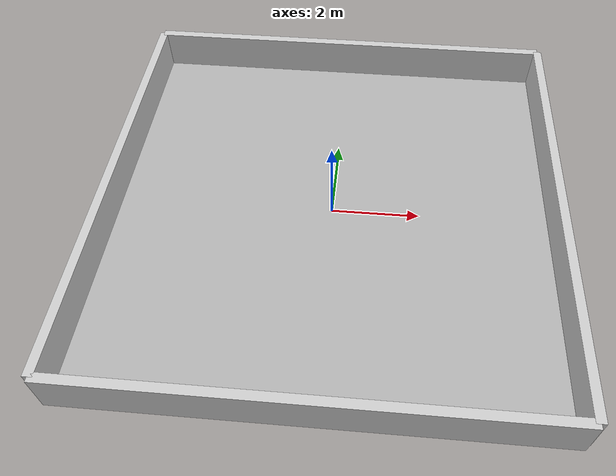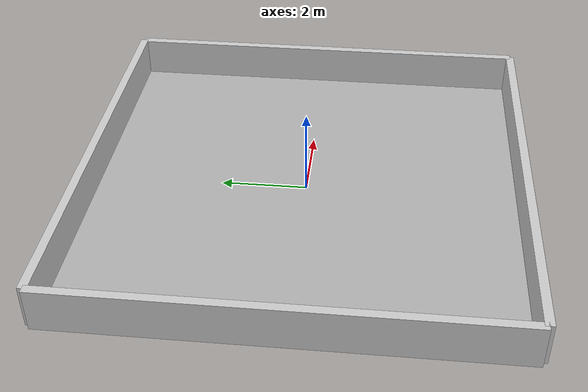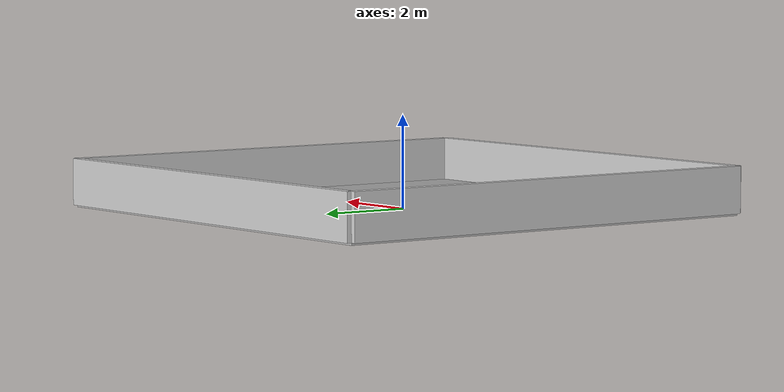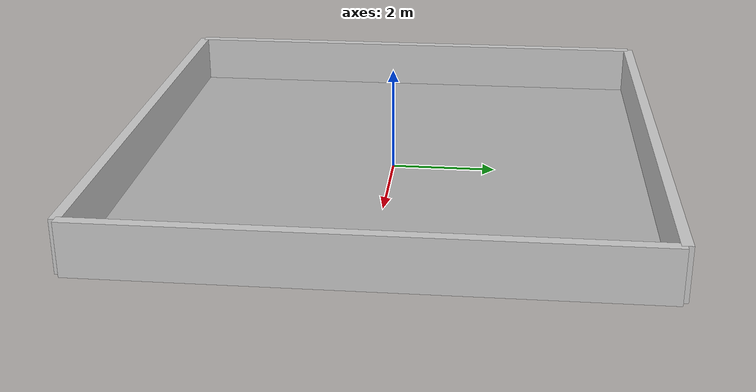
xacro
<?xml version="1.0"?>
<robot xmlns:xacro="http://www.ros.org/wiki/xacro" name="turtlebot_arena">

  <!-- "world" link to serve as the fixed reference -->
  <link name="world"/>

  <!-- The floor (arena_link) -->
  <link name="arena_link">
    <visual>
      <geometry>
        <!-- 10x10 floor, 0.1 thick -->
        <box size="10 10 0.1"/>
      </geometry>
      <material name="arena_gray">
        <color rgba="0.7 0.7 0.7 1"/>
      </material>
    </visual>
    <collision>
      <geometry>
        <box size="10 10 0.1"/>
      </geometry>
    </collision>
    <inertial>
      <!-- Increased mass to make it very stable -->
      <mass value="1000.0"/>
      <!-- Adjusted inertia for a heavy, stable platform -->
      <inertia ixx="1000.0" ixy="0.0" ixz="0.0" iyy="1000.0" iyz="0.0" izz="1000.0"/>
    </inertial>
    <!-- Add Gazebo-specific tags -->
    <gazebo>
      <static>true</static>
    </gazebo>
  </link>

  <!-- Attach the floor to the world with a fixed joint -->
  <joint name="world_to_arena" type="fixed">
    <parent link="world"/>
    <child link="arena_link"/>
    <origin xyz="0 0 0" rpy="0 0 0"/>
  </joint>

  <!-- ========== Four walls around the floor ========== -->
  <!-- North wall -->
  <link name="arena_wall_north">
    <visual>
      <geometry>
        <!-- 10m wide, 0.2m thick, 1m tall -->
        <box size="10 0.2 1.0"/>
      </geometry>
      <material name="wall_gray">
        <color rgba="0.8 0.8 0.8 1"/>
      </material>
    </visual>
    <collision>
      <geometry>
        <box size="10 0.2 1.0"/>
      </geometry>
    </collision>
    <inertial>
      <mass value="100.0"/>
      <inertia ixx="100.0" ixy="0" ixz="0" iyy="100.0" iyz="0" izz="100.0"/>
    </inertial>
  </link>

  <joint name="joint_arena_north_wall" type="fixed">
    <parent link="arena_link"/>
    <child link="arena_wall_north"/>
    <!-- Shift the north wall up on the Y axis, half the floor dimension + half wall thickness -->
    <origin xyz="0 5.0 0.5" rpy="0 0 0"/>
  </joint>

  <!-- South wall -->
  <link name="arena_wall_south">
    <visual>
      <geometry>
        <box size="10 0.2 1.0"/>
      </geometry>
      <material name="wall_gray"/>
    </visual>
    <collision>
      <geometry>
        <box size="10 0.2 1.0"/>
      </geometry>
    </collision>
    <inertial>
      <mass value="100.0"/>
      <inertia ixx="100.0" ixy="0" ixz="0" iyy="100.0" iyz="0" izz="100.0"/>
    </inertial>
  </link>

  <joint name="joint_arena_south_wall" type="fixed">
    <parent link="arena_link"/>
    <child link="arena_wall_south"/>
    <origin xyz="0 -5.0 0.5" rpy="0 0 0"/>
  </joint>

  <!-- East wall -->
  <link name="arena_wall_east">
    <visual>
      <geometry>
        <box size="0.2 10 1.0"/>
      </geometry>
      <material name="wall_gray"/>
    </visual>
    <collision>
      <geometry>
        <box size="0.2 10 1.0"/>
      </geometry>
    </collision>
    <inertial>
      <mass value="100.0"/>
      <inertia ixx="100.0" ixy="0" ixz="0" iyy="100.0" iyz="0" izz="100.0"/>
    </inertial>
  </link>

  <joint name="joint_arena_east_wall" type="fixed">
    <parent link="arena_link"/>
    <child link="arena_wall_east"/>
    <origin xyz="5.0 0 0.5" rpy="0 0 0"/>
  </joint>

  <!-- West wall -->
  <link name="arena_wall_west">
    <visual>
      <geometry>
        <box size="0.2 10 1.0"/>
      </geometry>
      <material name="wall_gray"/>
    </visual>
    <collision>
      <geometry>
        <box size="0.2 10 1.0"/>
      </geometry>
    </collision>
    <inertial>
      <mass value="100.0"/>
      <inertia ixx="100.0" ixy="0" ixz="0" iyy="100.0" iyz="0" izz="100.0"/>
    </inertial>
  </link>

  <joint name="joint_arena_west_wall" type="fixed">
    <parent link="arena_link"/>
    <child link="arena_wall_west"/>
    <origin xyz="-5.0 0 0.5" rpy="0 0 0"/>
  </joint>

  <!-- Add Gazebo-specific properties to make the entire model static -->
  <gazebo>
    <static>true</static>
  </gazebo>
</robot>
